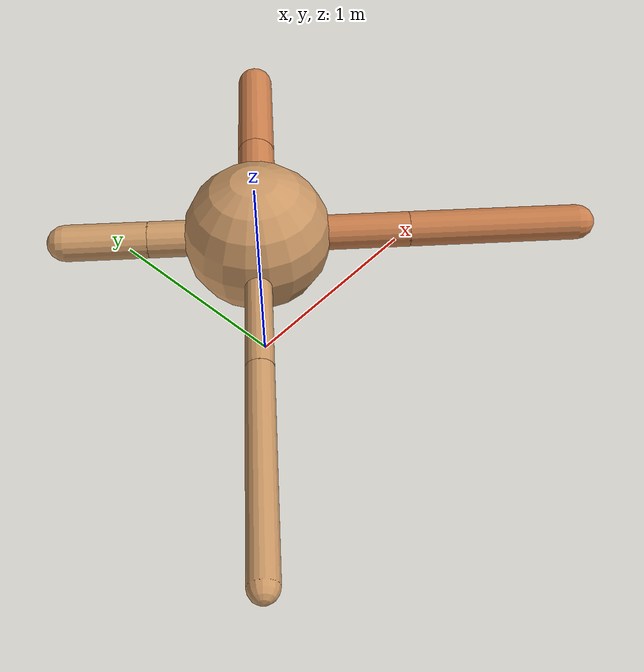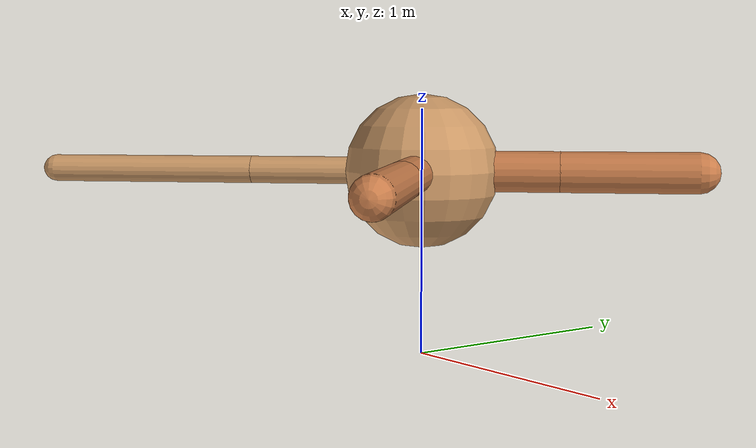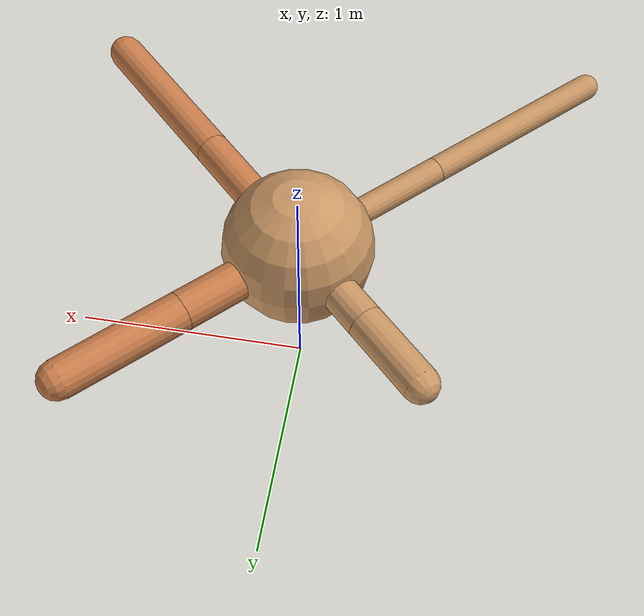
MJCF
<?xml version="1.0" ?>
<mujoco model="ant">

	<compiler angle="degree" coordinate="local" inertiafromgeom="true"/>

	<option integrator="RK4" timestep="0.01"/>

	<custom>

		<numeric data="0.0 0.0 0.55 1.0 0.0 0.0 0.0 0.0 1.0 0.0 -1.0 0.0 -1.0 0.0 1.0" name="init_qpos"/>

	</custom>

	<default>

		<joint armature="1" damping="1" limited="true"/>

		<geom conaffinity="0" condim="3" density="5.0" friction="1.5 0.1 0.1" margin="0.01" rgba="0.8 0.6 0.4 1"/>

	</default>

	<worldbody>

		<body name="torso" pos="0 0 0.75">

			<geom name="torso_geom" pos="0 0 0" size="0.3123168812506778" type="sphere"/>

			<!--joint armature="0" damping="0" limited="false" margin="0.01" name="root" pos="0 0 0" type="free"/-->

			<body name="front_left_leg" pos="0 0 0">

				<geom fromto="0 0 0 0.2 0.2 0" name="aux_1_geom" size="0.0828733378747159" type="capsule" rgba=".8 .5 .3 1"/>

				<body name="aux_1" pos="0.2 0.2 0">

					<joint axis="0 0 1" name="hip_1" pos="0.0 0.0 0.0" range="-40 40" type="hinge"/>

					<geom fromto="0 0 0 0.1922881237317685 0.1922881237317685 0" name="left_leg_geom" size="0.0828733378747159" type="capsule" rgba=".8 .5 .3 1"/>

					<body pos="0.1922881237317685 0.1922881237317685 0" name="front_left_foot">

						<joint axis="-1 1 0" name="ankle_1" pos="0.0 0.0 0.0" range="30 100" type="hinge"/>

						<geom fromto="0 0 0 0.384576247463537 0.384576247463537 0" name="left_ankle_geom" size="0.0828733378747159" type="capsule" rgba=".8 .5 .3 1"/>

					</body>

				</body>

			</body>

			<body name="front_right_leg" pos="0 0 0">

				<geom fromto="0 0 0 -0.2 0.2 0" name="aux_2_geom" size="0.0771404910584823" type="capsule"/>

				<body name="aux_2" pos="-0.2 0.2 0">

					<joint axis="0 0 1" name="hip_2" pos="0.0 0.0 0.0" range="-40 40" type="hinge"/>

					<geom fromto="0 0 0 -0.12251621718544597 0.12251621718544597 0" name="right_leg_geom" size="0.0771404910584823" type="capsule"/>

					<body pos="-0.12251621718544597 0.12251621718544597 0" name="front_right_foot">

						<joint axis="1 1 0" name="ankle_2" pos="0.0 0.0 0.0" range="-100 -30" type="hinge"/>

						<geom fromto="0 0 0 -0.24503243437089195 0.24503243437089195 0" name="right_ankle_geom" size="0.0771404910584823" type="capsule"/>

					</body>

				</body>

			</body>

			<body name="left_back_leg" pos="0 0 0">

				<geom fromto="0 0 0 -0.2 -0.2 0" name="aux_3_geom" size="0.05578124985263444" type="capsule"/>

				<body name="aux_3" pos="-0.2 -0.2 0">

					<joint axis="0 0 1" name="hip_3" pos="0.0 0.0 0.0" range="-40 40" type="hinge"/>

					<geom fromto="0 0 0 -0.2988858793484622 -0.2988858793484622 0" name="back_leg_geom" size="0.05578124985263444" type="capsule"/>

					<body pos="-0.2988858793484622 -0.2988858793484622 0" name="left_back_foot">

						<joint axis="-1 1 0" name="ankle_3" pos="0.0 0.0 0.0" range="-100 -30" type="hinge"/>

						<geom fromto="0 0 0 -0.5977717586969244 -0.5977717586969244 0" name="third_ankle_geom" size="0.05578124985263444" type="capsule"/>

					</body>

				</body>

			</body>

			<body name="right_back_leg" pos="0 0 0">

				<geom fromto="0 0 0 0.2 -0.2 0" name="aux_4_geom" size="0.07434186505814525" type="capsule" rgba=".8 .5 .3 1"/>

				<body name="aux_4" pos="0.2 -0.2 0">

					<joint axis="0 0 1" name="hip_4" pos="0.0 0.0 0.0" range="-40 40" type="hinge"/>

					<geom fromto="0 0 0 0.25489372962327644 -0.25489372962327644 0" name="rightback_leg_geom" size="0.07434186505814525" type="capsule" rgba=".8 .5 .3 1"/>

					<body pos="0.25489372962327644 -0.25489372962327644 0" name="right_back_foot">

						<joint axis="1 1 0" name="ankle_4" pos="0.0 0.0 0.0" range="30 100" type="hinge"/>

						<geom fromto="0 0 0 0.5097874592465529 -0.5097874592465529 0" name="fourth_ankle_geom" size="0.07434186505814525" type="capsule" rgba=".8 .5 .3 1"/>

					</body>

				</body>

			</body>

		</body>

	</worldbody>

	<actuator>

		<motor ctrllimited="true" ctrlrange="-1.0 1.0" joint="hip_4" gear="150"/>

		<motor ctrllimited="true" ctrlrange="-1.0 1.0" joint="ankle_4" gear="150"/>

		<motor ctrllimited="true" ctrlrange="-1.0 1.0" joint="hip_1" gear="150"/>

		<motor ctrllimited="true" ctrlrange="-1.0 1.0" joint="ankle_1" gear="150"/>

		<motor ctrllimited="true" ctrlrange="-1.0 1.0" joint="hip_2" gear="150"/>

		<motor ctrllimited="true" ctrlrange="-1.0 1.0" joint="ankle_2" gear="150"/>

		<motor ctrllimited="true" ctrlrange="-1.0 1.0" joint="hip_3" gear="150"/>

		<motor ctrllimited="true" ctrlrange="-1.0 1.0" joint="ankle_3" gear="150"/>

	</actuator>

</mujoco>
